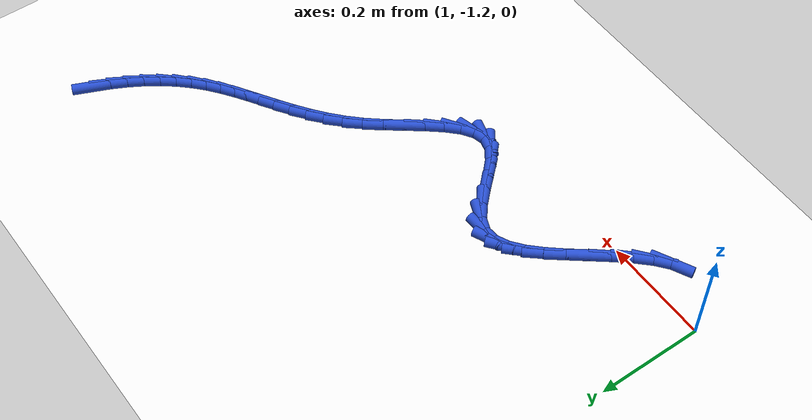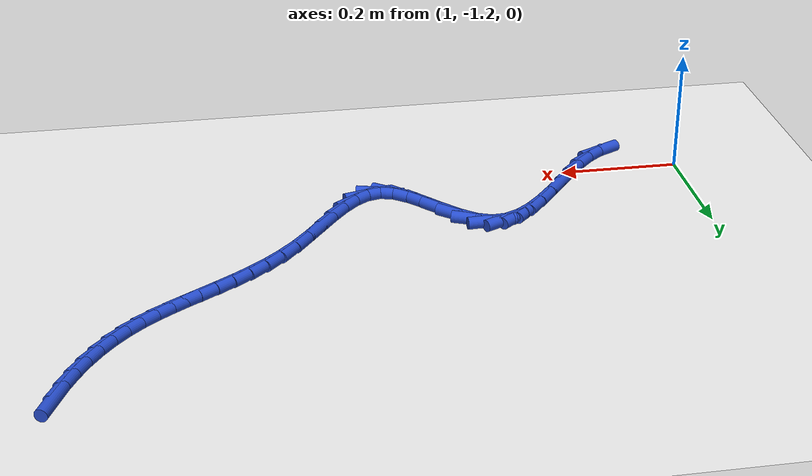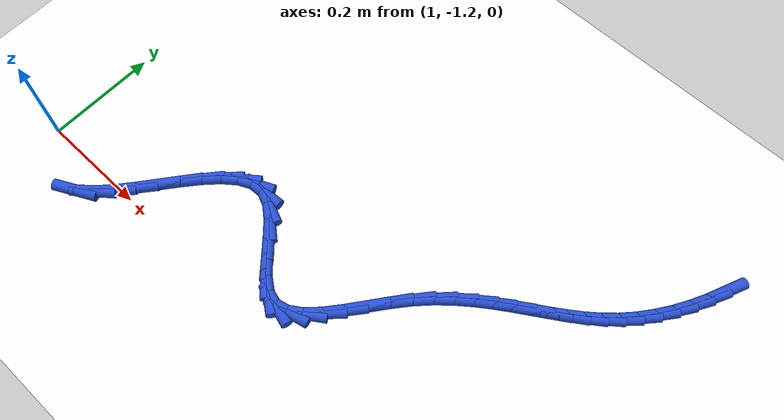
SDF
<sdf version="1.6">
 <world name="default">
  <model name="ground_plane">
   <static>1</static>
   <link name="link">
    <collision name="collision">
     <geometry><plane><normal>0 0 1</normal><size>100 100</size></plane></geometry>
     <surface><friction><ode><mu>100</mu><mu2>50</mu2></ode></friction></surface>
    </collision>
    <visual name="visual">
     <cast_shadows>0</cast_shadows>
     <geometry><plane><normal>0 0 1</normal><size>100 100</size></plane></geometry>
     <material>
      <script><uri>file://media/materials/scripts/gazebo.material</uri><name>Gazebo/WhiteGlow</name></script>
     </material>
    </visual>
   </link>
  </model>
  <model name="line">
   <link name="link_145">
    <pose>2.0384042765295796 -0.6472429091120088 0.01 0 1.57 1.1662041826635414</pose>
    <collision name="collision">
     <geometry><cylinder><radius>0.01</radius><length>0.08</length></cylinder></geometry>
    </collision>
    <visual name="visual">
     <material>
      <script><name>Gazebo/Blue</name><uri>file://media/materials/scripts/gazebo.material</uri></script>
     </material>
     <geometry><cylinder><radius>0.01</radius><length>0.08</length></cylinder></geometry>
    </visual>
   </link>
   <link name="link_146">
    <pose>2.025881281226913 -0.6764874306495481 0.01 0 1.57 1.103936204357991</pose>
    <collision name="collision">
     <geometry><cylinder><radius>0.01</radius><length>0.08</length></cylinder></geometry>
    </collision>
    <visual name="visual">
     <material>
      <script><name>Gazebo/Blue</name><uri>file://media/materials/scripts/gazebo.material</uri></script>
     </material>
     <geometry><cylinder><radius>0.01</radius><length>0.08</length></cylinder></geometry>
    </visual>
   </link>
   <link name="link_147">
    <pose>2.011718939778446 -0.7045860814701285 0.01 0 1.57 1.0394678301496818</pose>
    <collision name="collision">
     <geometry><cylinder><radius>0.01</radius><length>0.08</length></cylinder></geometry>
    </collision>
    <visual name="visual">
     <material>
      <script><name>Gazebo/Blue</name><uri>file://media/materials/scripts/gazebo.material</uri></script>
     </material>
     <geometry><cylinder><radius>0.01</radius><length>0.08</length></cylinder></geometry>
    </visual>
   </link>
   <link name="link_148">
    <pose>1.9959939986096227 -0.7313426948039395 0.01 0 1.57 0.9719329601004071</pose>
    <collision name="collision">
     <geometry><cylinder><radius>0.01</radius><length>0.08</length></cylinder></geometry>
    </collision>
    <visual name="visual">
     <material>
      <script><name>Gazebo/Blue</name><uri>file://media/materials/scripts/gazebo.material</uri></script>
     </material>
     <geometry><cylinder><radius>0.01</radius><length>0.08</length></cylinder></geometry>
    </visual>
   </link>
   <link name="link_149">
    <pose>1.978783204145888 -0.7565611038811703 0.01 0 1.57 0.9004151611614566</pose>
    <collision name="collision">
     <geometry><cylinder><radius>0.01</radius><length>0.08</length></cylinder></geometry>
    </collision>
    <visual name="visual">
     <material>
      <script><name>Gazebo/Blue</name><uri>file://media/materials/scripts/gazebo.material</uri></script>
     </material>
     <geometry><cylinder><radius>0.01</radius><length>0.08</length></cylinder></geometry>
    </visual>
   </link>
   <link name="link_150">
    <pose>1.9601633028126848 -0.78004514193201 0.01 0 1.57 0.8239577446351507</pose>
    <collision name="collision">
     <geometry><cylinder><radius>0.01</radius><length>0.08</length></cylinder></geometry>
    </collision>
    <visual name="visual">
     <material>
      <script><name>Gazebo/Blue</name><uri>file://media/materials/scripts/gazebo.material</uri></script>
     </material>
     <geometry><cylinder><radius>0.01</radius><length>0.08</length></cylinder></geometry>
    </visual>
   </link>
   <link name="link_151">
    <pose>1.9402110410354578 -0.8015986421866479 0.01 0 1.57 0.7435692318102812</pose>
    <collision name="collision">
     <geometry><cylinder><radius>0.01</radius><length>0.08</length></cylinder></geometry>
    </collision>
    <visual name="visual">
     <material>
      <script><name>Gazebo/Blue</name><uri>file://media/materials/scripts/gazebo.material</uri></script>
     </material>
     <geometry><cylinder><radius>0.01</radius><length>0.08</length></cylinder></geometry>
    </visual>
   </link>
   <link name="link_152">
    <pose>1.919012973534502 -0.8210935716804751 0.01 0 1.57 0.6727545629571594</pose>
    <collision name="collision">
     <geometry><cylinder><radius>0.01</radius><length>0.08</length></cylinder></geometry>
    </collision>
    <visual name="visual">
     <material>
      <script><name>Gazebo/Blue</name><uri>file://media/materials/scripts/gazebo.material</uri></script>
     </material>
     <geometry><cylinder><radius>0.01</radius><length>0.08</length></cylinder></geometry>
    </visual>
   </link>
   <link name="link_153">
    <pose>1.8967208484368476 -0.8388547666725568 0.01 0 1.57 0.6191066758013075</pose>
    <collision name="collision">
     <geometry><cylinder><radius>0.01</radius><length>0.08</length></cylinder></geometry>
    </collision>
    <visual name="visual">
     <material>
      <script><name>Gazebo/Blue</name><uri>file://media/materials/scripts/gazebo.material</uri></script>
     </material>
     <geometry><cylinder><radius>0.01</radius><length>0.08</length></cylinder></geometry>
    </visual>
   </link>
   <link name="link_154">
    <pose>1.8735130045367376 -0.8553917768066603 0.01 0 1.57 0.5839291045436615</pose>
    <collision name="collision">
     <geometry><cylinder><radius>0.01</radius><length>0.08</length></cylinder></geometry>
    </collision>
    <visual name="visual">
     <material>
      <script><name>Gazebo/Blue</name><uri>file://media/materials/scripts/gazebo.material</uri></script>
     </material>
     <geometry><cylinder><radius>0.01</radius><length>0.08</length></cylinder></geometry>
    </visual>
   </link>
   <link name="link_155">
    <pose>1.849567858994504 -0.8712146961004607 0.01 0 1.57 0.5674680776832267</pose>
    <collision name="collision">
     <geometry><cylinder><radius>0.01</radius><length>0.08</length></cylinder></geometry>
    </collision>
    <visual name="visual">
     <material>
      <script><name>Gazebo/Blue</name><uri>file://media/materials/scripts/gazebo.material</uri></script>
     </material>
     <geometry><cylinder><radius>0.01</radius><length>0.08</length></cylinder></geometry>
    </visual>
   </link>
   <link name="link_156">
    <pose>1.8250638289704784 -0.8868336185716327 0.01 0 1.57 0.5692830103644677</pose>
    <collision name="collision">
     <geometry><cylinder><radius>0.01</radius><length>0.08</length></cylinder></geometry>
    </collision>
    <visual name="visual">
     <material>
      <script><name>Gazebo/Blue</name><uri>file://media/materials/scripts/gazebo.material</uri></script>
     </material>
     <geometry><cylinder><radius>0.01</radius><length>0.08</length></cylinder></geometry>
    </visual>
   </link>
   <link name="link_157">
    <pose>1.8001793316249926 -0.9027586382378504 0.01 0 1.57 0.588467351207862</pose>
    <collision name="collision">
     <geometry><cylinder><radius>0.01</radius><length>0.08</length></cylinder></geometry>
    </collision>
    <visual name="visual">
     <material>
      <script><name>Gazebo/Blue</name><uri>file://media/materials/scripts/gazebo.material</uri></script>
     </material>
     <geometry><cylinder><radius>0.01</radius><length>0.08</length></cylinder></geometry>
    </visual>
   </link>
   <link name="link_158">
    <pose>1.7750927841183777 -0.9194998491167894 0.01 0 1.57 0.6237126060964328</pose>
    <collision name="collision">
     <geometry><cylinder><radius>0.01</radius><length>0.08</length></cylinder></geometry>
    </collision>
    <visual name="visual">
     <material>
      <script><name>Gazebo/Blue</name><uri>file://media/materials/scripts/gazebo.material</uri></script>
     </material>
     <geometry><cylinder><radius>0.01</radius><length>0.08</length></cylinder></geometry>
    </visual>
   </link>
   <link name="link_159">
    <pose>1.7499826036109671 -0.9375673452261242 0.01 0 1.57 0.6732623732489694</pose>
    <collision name="collision">
     <geometry><cylinder><radius>0.01</radius><length>0.08</length></cylinder></geometry>
    </collision>
    <visual name="visual">
     <material>
      <script><name>Gazebo/Blue</name><uri>file://media/materials/scripts/gazebo.material</uri></script>
     </material>
     <geometry><cylinder><radius>0.01</radius><length>0.08</length></cylinder></geometry>
    </visual>
   </link>
   <link name="link_160">
    <pose>1.725027207263091 -0.9574712205835295 0.01 0 1.57 0.7348392455062569</pose>
    <collision name="collision">
     <geometry><cylinder><radius>0.01</radius><length>0.08</length></cylinder></geometry>
    </collision>
    <visual name="visual">
     <material>
      <script><name>Gazebo/Blue</name><uri>file://media/materials/scripts/gazebo.material</uri></script>
     </material>
     <geometry><cylinder><radius>0.01</radius><length>0.08</length></cylinder></geometry>
    </visual>
   </link>
   <link name="link_161">
    <pose>1.7004050122350813 -0.97972156920668 0.01 0 1.57 0.8056390013888878</pose>
    <collision name="collision">
     <geometry><cylinder><radius>0.01</radius><length>0.08</length></cylinder></geometry>
    </collision>
    <visual name="visual">
     <material>
      <script><name>Gazebo/Blue</name><uri>file://media/materials/scripts/gazebo.material</uri></script>
     </material>
     <geometry><cylinder><radius>0.01</radius><length>0.08</length></cylinder></geometry>
    </visual>
   </link>
   <link name="link_162">
    <pose>1.6762944356872709 -1.0048284851132505 0.01 0 1.57 0.8785941583229232</pose>
    <collision name="collision">
     <geometry><cylinder><radius>0.01</radius><length>0.08</length></cylinder></geometry>
    </collision>
    <visual name="visual">
     <material>
      <script><name>Gazebo/Blue</name><uri>file://media/materials/scripts/gazebo.material</uri></script>
     </material>
     <geometry><cylinder><radius>0.01</radius><length>0.08</length></cylinder></geometry>
    </visual>
   </link>
   <link name="link_163">
    <pose>1.6528502306774138 -1.033107049449036 0.01 0 1.57 0.9214966611045057</pose>
    <collision name="collision">
     <geometry><cylinder><radius>0.01</radius><length>0.08</length></cylinder></geometry>
    </collision>
    <visual name="visual">
     <material>
      <script><name>Gazebo/Blue</name><uri>file://media/materials/scripts/gazebo.material</uri></script>
     </material>
     <geometry><cylinder><radius>0.01</radius><length>0.08</length></cylinder></geometry>
    </visual>
   </link>
   <link name="link_164">
    <pose>1.6300217996091817 -1.0631800746306195 0.01 0 1.57 0.923999771573648</pose>
    <collision name="collision">
     <geometry><cylinder><radius>0.01</radius><length>0.08</length></cylinder></geometry>
    </collision>
    <visual name="visual">
     <material>
      <script><name>Gazebo/Blue</name><uri>file://media/materials/scripts/gazebo.material</uri></script>
     </material>
     <geometry><cylinder><radius>0.01</radius><length>0.08</length></cylinder></geometry>
    </visual>
   </link>
   <link name="link_165">
    <pose>1.6076530711334909 -1.0928011772381439 0.01 0 1.57 0.8840874055825223</pose>
    <collision name="collision">
     <geometry><cylinder><radius>0.01</radius><length>0.08</length></cylinder></geometry>
    </collision>
    <visual name="visual">
     <material>
      <script><name>Gazebo/Blue</name><uri>file://media/materials/scripts/gazebo.material</uri></script>
     </material>
     <geometry><cylinder><radius>0.01</radius><length>0.08</length></cylinder></geometry>
    </visual>
   </link>
   <link name="link_166">
    <pose>1.5855871099462924 -1.1197168541083133 0.01 0 1.57 0.7862327432631846</pose>
    <collision name="collision">
     <geometry><cylinder><radius>0.01</radius><length>0.08</length></cylinder></geometry>
    </collision>
    <visual name="visual">
     <material>
      <script><name>Gazebo/Blue</name><uri>file://media/materials/scripts/gazebo.material</uri></script>
     </material>
     <geometry><cylinder><radius>0.01</radius><length>0.08</length></cylinder></geometry>
    </visual>
   </link>
   <link name="link_167">
    <pose>1.5636669807435362 -1.1416736020778309 0.01 0 1.57 0.5918908460723157</pose>
    <collision name="collision">
     <geometry><cylinder><radius>0.01</radius><length>0.08</length></cylinder></geometry>
    </collision>
    <visual name="visual">
     <material>
      <script><name>Gazebo/Blue</name><uri>file://media/materials/scripts/gazebo.material</uri></script>
     </material>
     <geometry><cylinder><radius>0.01</radius><length>0.08</length></cylinder></geometry>
    </visual>
   </link>
   <link name="link_168">
    <pose>1.5417357482211735 -1.1564179179834013 0.01 0 1.57 0.23445603538090848</pose>
    <collision name="collision">
     <geometry><cylinder><radius>0.01</radius><length>0.08</length></cylinder></geometry>
    </collision>
    <visual name="visual">
     <material>
      <script><name>Gazebo/Blue</name><uri>file://media/materials/scripts/gazebo.material</uri></script>
     </material>
     <geometry><cylinder><radius>0.01</radius><length>0.08</length></cylinder></geometry>
    </visual>
   </link>
   <link name="link_169">
    <pose>1.5196364770751543 -1.1616962986617276 0.01 0 1.57 -0.2727326832723807</pose>
    <collision name="collision">
     <geometry><cylinder><radius>0.01</radius><length>0.08</length></cylinder></geometry>
    </collision>
    <visual name="visual">
     <material>
      <script><name>Gazebo/Blue</name><uri>file://media/materials/scripts/gazebo.material</uri></script>
     </material>
     <geometry><cylinder><radius>0.01</radius><length>0.08</length></cylinder></geometry>
    </visual>
   </link>
   <link name="link_170">
    <pose>1.497218306916377 -1.1554258834890772 0.01 0 1.57 -0.6336130446519811</pose>
    <collision name="collision">
     <geometry><cylinder><radius>0.01</radius><length>0.08</length></cylinder></geometry>
    </collision>
    <visual name="visual">
     <material>
      <script><name>Gazebo/Blue</name><uri>file://media/materials/scripts/gazebo.material</uri></script>
     </material>
     <geometry><cylinder><radius>0.01</radius><length>0.08</length></cylinder></geometry>
    </visual>
   </link>
   <link name="link_171">
    <pose>1.4744432323838386 -1.1386938757459517 0.01 0 1.57 -0.7904876792531663</pose>
    <collision name="collision">
     <geometry><cylinder><radius>0.01</radius><length>0.08</length></cylinder></geometry>
    </collision>
    <visual name="visual">
     <material>
      <script><name>Gazebo/Blue</name><uri>file://media/materials/scripts/gazebo.material</uri></script>
     </material>
     <geometry><cylinder><radius>0.01</radius><length>0.08</length></cylinder></geometry>
    </visual>
   </link>
   <link name="link_172">
    <pose>1.451372930876614 -1.1153875375576252 0.01 0 1.57 -0.8381303026091514</pose>
    <collision name="collision">
     <geometry><cylinder><radius>0.01</radius><length>0.08</length></cylinder></geometry>
    </collision>
    <visual name="visual">
     <material>
      <script><name>Gazebo/Blue</name><uri>file://media/materials/scripts/gazebo.material</uri></script>
     </material>
     <geometry><cylinder><radius>0.01</radius><length>0.08</length></cylinder></geometry>
    </visual>
   </link>
   <link name="link_173">
    <pose>1.4280725075275833 -1.0894904150642264 0.01 0 1.57 -0.8070525832968753</pose>
    <collision name="collision">
     <geometry><cylinder><radius>0.01</radius><length>0.08</length></cylinder></geometry>
    </collision>
    <visual name="visual">
     <material>
      <script><name>Gazebo/Blue</name><uri>file://media/materials/scripts/gazebo.material</uri></script>
     </material>
     <geometry><cylinder><radius>0.01</radius><length>0.08</length></cylinder></geometry>
    </visual>
   </link>
   <link name="link_174">
    <pose>1.4046070674696252 -1.0649860544058851 0.01 0 1.57 -0.6818359358356519</pose>
    <collision name="collision">
     <geometry><cylinder><radius>0.01</radius><length>0.08</length></cylinder></geometry>
    </collision>
    <visual name="visual">
     <material>
      <script><name>Gazebo/Blue</name><uri>file://media/materials/scripts/gazebo.material</uri></script>
     </material>
     <geometry><cylinder><radius>0.01</radius><length>0.08</length></cylinder></geometry>
    </visual>
   </link>
   <link name="link_175">
    <pose>1.3810417158356187 -1.0458580017227295 0.01 0 1.57 -0.39360147611069723</pose>
    <collision name="collision">
     <geometry><cylinder><radius>0.01</radius><length>0.08</length></cylinder></geometry>
    </collision>
    <visual name="visual">
     <material>
      <script><name>Gazebo/Blue</name><uri>file://media/materials/scripts/gazebo.material</uri></script>
     </material>
     <geometry><cylinder><radius>0.01</radius><length>0.08</length></cylinder></geometry>
    </visual>
   </link>
   <link name="link_176">
    <pose>1.357441156441447 -1.0360573696028639 0.01 0 1.57 0.05718655187450023</pose>
    <collision name="collision">
     <geometry><cylinder><radius>0.01</radius><length>0.08</length></cylinder></geometry>
    </collision>
    <visual name="visual">
     <material>
      <script><name>Gazebo/Blue</name><uri>file://media/materials/scripts/gazebo.material</uri></script>
     </material>
     <geometry><cylinder><radius>0.01</radius><length>0.08</length></cylinder></geometry>
    </visual>
   </link>
   <link name="link_177">
    <pose>1.3338437749466368 -1.0374082954500239 0.01 0 1.57 0.4334537717576436</pose>
    <collision name="collision">
     <geometry><cylinder><radius>0.01</radius><length>0.08</length></cylinder></geometry>
    </collision>
    <visual name="visual">
     <material>
      <script><name>Gazebo/Blue</name><uri>file://media/materials/scripts/gazebo.material</uri></script>
     </material>
     <geometry><cylinder><radius>0.01</radius><length>0.08</length></cylinder></geometry>
    </visual>
   </link>
   <link name="link_178">
    <pose>1.3102458214572756 -1.048329614436805 0.01 0 1.57 0.6674588977642113</pose>
    <collision name="collision">
     <geometry><cylinder><radius>0.01</radius><length>0.08</length></cylinder></geometry>
    </collision>
    <visual name="visual">
     <material>
      <script><name>Gazebo/Blue</name><uri>file://media/materials/scripts/gazebo.material</uri></script>
     </material>
     <geometry><cylinder><radius>0.01</radius><length>0.08</length></cylinder></geometry>
    </visual>
   </link>
   <link name="link_179">
    <pose>1.2866397599473214 -1.066934174911706 0.01 0 1.57 0.801617202161982</pose>
    <collision name="collision">
     <geometry><cylinder><radius>0.01</radius><length>0.08</length></cylinder></geometry>
    </collision>
    <visual name="visual">
     <material>
      <script><name>Gazebo/Blue</name><uri>file://media/materials/scripts/gazebo.material</uri></script>
     </material>
     <geometry><cylinder><radius>0.01</radius><length>0.08</length></cylinder></geometry>
    </visual>
   </link>
   <link name="link_180">
    <pose>1.2630180543907341 -1.0913348252232271 0.01 0 1.57 0.8749424959830253</pose>
    <collision name="collision">
     <geometry><cylinder><radius>0.01</radius><length>0.08</length></cylinder></geometry>
    </collision>
    <visual name="visual">
     <material>
      <script><name>Gazebo/Blue</name><uri>file://media/materials/scripts/gazebo.material</uri></script>
     </material>
     <geometry><cylinder><radius>0.01</radius><length>0.08</length></cylinder></geometry>
    </visual>
   </link>
   <link name="link_181">
    <pose>1.2393731687614735 -1.1196444137198676 0.01 0 1.57 0.9080190127808856</pose>
    <collision name="collision">
     <geometry><cylinder><radius>0.01</radius><length>0.08</length></cylinder></geometry>
    </collision>
    <visual name="visual">
     <material>
      <script><name>Gazebo/Blue</name><uri>file://media/materials/scripts/gazebo.material</uri></script>
     </material>
     <geometry><cylinder><radius>0.01</radius><length>0.08</length></cylinder></geometry>
    </visual>
   </link>
   <link name="link_182">
    <pose>1.2156975670334984 -1.149975788750127 0.01 0 1.57 0.9093837381785047</pose>
    <collision name="collision">
     <geometry><cylinder><radius>0.01</radius><length>0.08</length></cylinder></geometry>
    </collision>
    <visual name="visual">
     <material>
      <script><name>Gazebo/Blue</name><uri>file://media/materials/scripts/gazebo.material</uri></script>
     </material>
     <geometry><cylinder><radius>0.01</radius><length>0.08</length></cylinder></geometry>
    </visual>
   </link>
   <link name="link_183">
    <pose>1.191983713180768 -1.1804417986625044 0.01 0 1.57 0.8795265559157741</pose>
    <collision name="collision">
     <geometry><cylinder><radius>0.01</radius><length>0.08</length></cylinder></geometry>
    </collision>
    <visual name="visual">
     <material>
      <script><name>Gazebo/Blue</name><uri>file://media/materials/scripts/gazebo.material</uri></script>
     </material>
     <geometry><cylinder><radius>0.01</radius><length>0.08</length></cylinder></geometry>
    </visual>
   </link>
   <link name="link_184">
    <pose>1.1682240711772411 -1.2091552918054995 0.01 0 1.57 0.8111838420499772</pose>
    <collision name="collision">
     <geometry><cylinder><radius>0.01</radius><length>0.08</length></cylinder></geometry>
    </collision>
    <visual name="visual">
     <material>
      <script><name>Gazebo/Blue</name><uri>file://media/materials/scripts/gazebo.material</uri></script>
     </material>
     <geometry><cylinder><radius>0.01</radius><length>0.08</length></cylinder></geometry>
    </visual>
   </link>
   <link name="link_185">
    <pose>1.1444111049968773 -1.2342291165276116 0.01 0 1.57 0.6860775188092552</pose>
    <collision name="collision">
     <geometry><cylinder><radius>0.01</radius><length>0.08</length></cylinder></geometry>
    </collision>
    <visual name="visual">
     <material>
      <script><name>Gazebo/Blue</name><uri>file://media/materials/scripts/gazebo.material</uri></script>
     </material>
     <geometry><cylinder><radius>0.01</radius><length>0.08</length></cylinder></geometry>
    </visual>
   </link>
   <link name="link_186">
    <pose>1.120537278613636 -1.2537761211773406 0.01 0 1.57 0.46904337214659914</pose>
    <collision name="collision">
     <geometry><cylinder><radius>0.01</radius><length>0.08</length></cylinder></geometry>
    </collision>
    <visual name="visual">
     <material>
      <script><name>Gazebo/Blue</name><uri>file://media/materials/scripts/gazebo.material</uri></script>
     </material>
     <geometry><cylinder><radius>0.01</radius><length>0.08</length></cylinder></geometry>
    </visual>
   </link>
  </model>
 </world>
</sdf>
